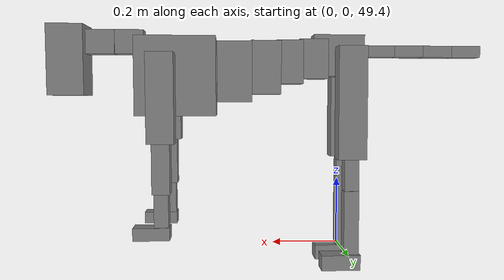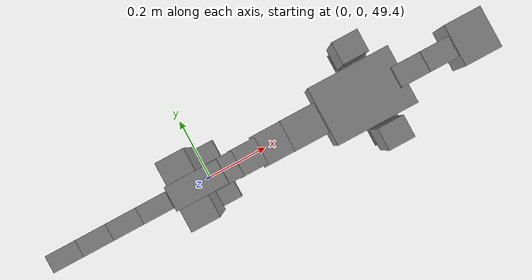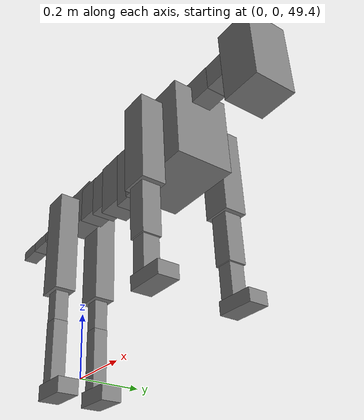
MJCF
<mujoco model="dog">

    <default>
        <joint armature="0.02" stiffness="1" damping="0.2" limited="true"/>
        <geom condim="3" friction="1 0.05 0.05" margin="0.01"/>
        <motor ctrllimited="true" ctrlrange="-1.0 1.0" forcelimited="true" gear="50"/>
    </default>

    <compiler inertiafromgeom="true" angle="radian"/>

    <option timestep="0.016" iterations="50" tolerance="1e-10" solver="Newton" jacobian="dense" cone="pyramidal"/>

    <size nconmax="20000" njmax="60000" nstack="5000000"/>
    <visual>
        <map force="0.1" zfar="30"/>
        <rgba haze="0.15 0.25 0.35 1"/>
        <quality shadowsize="2048"/>
        <global offwidth="800" offheight="800"/>
    </visual>

    <asset>
        <texture type="skybox" builtin="gradient" rgb1="0.3 0.5 0.7" rgb2="0 0 0" width="512" height="512"/>
        <texture name="texplane" type="2d" builtin="checker" rgb1=".2 .3 .4" rgb2=".1 0.15 0.2" width="512" height="512"
                 mark="cross" markrgb=".8 .8 .8"/>
        <texture name="texgeom" type="cube" builtin="flat" mark="cross" width="127" height="1278" rgb1="0.8 0.6 0.4"
                 rgb2="0.8 0.6 0.4" markrgb="1 1 1" random="0.01"/>

        <material name="matplane" reflectance="0.3" texture="texplane" texrepeat="1 1" texuniform="true"/>
        <material name="matgeom" texture="texgeom" texuniform="true" rgba="0.8 0.6 .4 1"/>
    </asset>

    <worldbody>
        <geom name="floor" pos="0 0 0" size="0 0 .25" type="plane" material="matplane" condim="3"/>

        <light directional="false" diffuse=".2 .2 .2" specular="0 0 0" pos="0 0 5" dir="0 0 -1" castshadow="false"/>
        <light mode="targetbodycom" target="torso" directional="false" diffuse=".8 .8 .8" specular="0.3 0.3 0.3"
               pos="0 0 4.0" dir="0 0 -1"/>

        <body name="root" pos="0 0 50">
            <freejoint name="root_1"/>
            <geom type="box" pos="0 0 -0.02" size="0.0774  0.0358  0.063" density="2030"/>

            <body name="spine1" pos="0.054 0 0">
                <joint name="spine1_y" axis="0 1 0" range="0 0.7" limited="true"/>
                <geom type="box" pos="0.02375 0 -0.03" size="0.04375  0.0375  0.05985" density="2030"/>

                <body name="spine2" pos="0.0612 0 0">
                    <joint name="spine2_y" axis="0 1 0" range="-0.15 0.15" limited="true"/>
                    <geom type="box" pos="0.03555  0  -0.04" size="0.04055  0.039  0.06615" density="2030"/>

                    <body name="spine3" pos="0.0730 0 0">
                        <joint name="spine3_y" axis="0 1 0" range="-0.15 0.15" limited="true"/>
                        <geom type="box" pos="0.03555  0  -0.057" size="0.04555  0.0445  0.081" density="2030"/>

                        <body name="spine4" pos="0.0780 0 0">
                            <joint name="spine4_y" axis="0 1 0" range="-0.15 0.15" limited="true"/>
                            <geom type="box" pos="0.05265  0  -0.07" size="0.05265  0.045  0.09135" density="2030"/>

                            <body name="torso" pos="0.1082 0 0">
                                <joint name="torso_y" axis="0 1 0" range="-0.15 0.15" limited="true"/>
                                <geom type="box" pos="0.11925  0  -0.085" size="0.11925  0.085  0.11745"
                                      density="2030"/>

                                <body name="neck1" pos="0.2160  0   0.0180">
                                    <joint name="neck1_y" axis="0 1 0" range="-1.2  -1" limited="true"/>
                                    <geom type="box" pos="0.0423  0  0" size="0.0423  0.03  0.036" density="2325"/>

                                    <body name="neck2" pos="0.0853  0  0">
                                        <joint name="neck2_y" axis="0 1 0" range="0.1  0" limited="true"/>
                                        <geom type="box" pos="0.0423  0  0" size="0.0423  0.03  0.036" density="2325"/>

                                        <body name="head" pos="0.0853  0  0">
                                            <joint name="head_y" axis="0 1 0" range="-0.3  -0.2" limited="true"/>
                                            <geom type="box" pos="0.0531  0  -0.055" size="0.0531  0.06  0.1044"
                                                  density="4030"/>

                                        </body>
                                    </body>
                                </body>

                                <body name="front_shoulder" pos="0.156  0   -0.0480">
                                    <joint name="front_shoulder_y" axis="0 1 0" range="-1 1.5" limited="true"/>
                                    <geom type="box" pos="0 0.13 -0.1031" size="0.0391  0.0334  0.1297" density="1158"/>
                                    <geom type="box" pos="0 -0.13 -0.1031" size="0.0391  0.0334  0.1297"
                                          density="1158"/>

                                    <body name="front_elbow" pos="0  0  -0.2062">
                                        <joint name="front_elbow_y" axis="0 1 0" range="-2 0" limited="true"/>
                                        <geom type="box" pos="0 0.13 -0.0850" size="0.0258  0.0264  0.0850"
                                              density="1081"/>
                                        <geom type="box" pos="0 -0.13 -0.0850" size="0.0258  0.0264  0.0850"
                                              density="1081"/>

                                        <body name="front_wrist" pos="0  0  -0.1699">
                                            <joint name="front_wrist_y" axis="0 1 0" range="-0.2 0" limited="true"/>
                                            <geom type="box" pos="0 0.13 -0.0551" size="0.0206  0.0228  0.0683"
                                                  density="1664"/>
                                            <geom type="box" pos="0 -0.13 -0.0551" size="0.0206  0.0228  0.0683"
                                                  density="1664"/>

                                            <body name="front_finger_end" pos="0  0  -0.1102">
                                                <joint name="front_finger_y" axis="0 1 0" range="-0.4 1"
                                                       limited="true"/>
                                                <geom type="box" pos="0.0285  0.13  -0.0035"
                                                      size="0.0523  0.0285  0.0185" density="1515"/>
                                                <geom type="box" pos="0.0285  -0.13  -0.0035"
                                                      size="0.0523  0.0285  0.0185" density="1515"/>

                                            </body>

                                        </body>
                                    </body>
                                </body>

                            </body>
                        </body>
                    </body>
                </body>
            </body>

            <body name="back_hip" pos="-0.03 0 -0.018">
                <joint name="back_hip_y" axis="0 1 0" range="-1.5 0.3" limited="true"/>
                <geom type="box" pos="0 0.07 -0.1466" size="0.0430  0.0337  0.1694" density="1154"/>
                <geom type="box" pos="0 -0.07 -0.1466" size="0.0430  0.0337  0.1694" density="1154"/>

                <body name="back_knee" pos="0  0  -0.2933">
                    <joint name="back_knee_y" axis="0 1 0" range="0 2.8" limited="true"/>
                    <geom type="box" pos="0 0.07 -0.0644" size="0.0221  0.0218  0.0799" density="1227"/>
                    <geom type="box" pos="0 -0.07 -0.0644" size="0.0221  0.0218  0.0799" density="1227"/>

                    <body name="back_ankle" pos="0  0  -0.1288">
                        <joint name="back_ankle_y" axis="0 1 0" range="-2.2 0" limited="true"/>
                        <geom type="box" pos="0 0.07 -0.0985" size="0.0227  0.0227  0.1098" density="1284"/>
                        <geom type="box" pos="0 -0.07 -0.0985" size="0.0227  0.0227  0.1098" density="1284"/>

                        <body name="back_toe_end" pos="0  0  -0.1970">
                            <joint name="back_toe_y" axis="0 1 0" range="-0.4 1" limited="true"/>
                            <geom type="box" pos="0.0320  0.07  -0.0080" size="0.0587  0.0320  0.0230" density="1515"/>
                            <geom type="box" pos="0.0320  -0.07  -0.0080" size="0.0587  0.0320  0.0230" density="1515"/>

                        </body>
                    </body>
                </body>
            </body>

            <body name="tail1" pos="-0.074 0 -0.006">
                <joint name="tail1_y" axis="0 1 0" range="-0.2 0.2" limited="true"/>
                <geom type="box" pos="-0.0536  0  0" size="0.045  0.025  0.0175" density="1587"/>

                <body name="tail2" pos="-0.09 0 0">
                    <joint name="tail2_y" axis="0 1 0" range="-0.2 0.2" limited="true"/>
                    <geom type="box" pos="-0.0536  0  0" size="0.045  0.025  0.0175" density="1587"/>

                    <body name="tail3" pos="-0.09 0 0">
                        <joint name="tail3_y" axis="0 1 0" range="-0.2 0.2" limited="true"/>
                        <geom type="box" pos="-0.0536  0  0" size="0.045  0.025  0.0175" density="1587"/>

                        <body name="tail4" pos="-0.09 0 0">
                            <joint name="tail4_y" axis="0 1 0" range="-0.2 0.2" limited="true"/>
                            <geom type="box" pos="-0.0536  0  0" size="0.045  0.025  0.0175" density="1587"/>

                        </body>
                    </body>
                </body>
            </body>
        </body>
    </worldbody>

    <actuator>
        <motor joint="spine1_y" forcerange="-150 150     "/>
        <motor joint="spine2_y" forcerange="-150 150     "/>
        <motor joint="spine3_y" forcerange="-150 150     "/>
        <motor joint="spine4_y" forcerange="-150 150     "/>
        <motor joint="torso_y" forcerange="-150 150     "/>
        <motor joint="neck1_y" forcerange="-100 100       "/>
        <motor joint="neck2_y" forcerange="-100 100       "/>
        <motor joint="head_y" forcerange="-150 150       "/>
        <motor joint="front_shoulder_y" forcerange="-184.04 138.63"/>
        <motor joint="front_elbow_y" forcerange="-127.24 164.63"/>
        <motor joint="front_wrist_y" forcerange="-71.86 110.89"/>
        <motor joint="front_finger_y" forcerange="-29.07 83.02"/>
        <motor joint="back_hip_y" forcerange="-256.91 392.52"/>
        <motor joint="back_knee_y" forcerange="-208.63 307.77"/>
        <motor joint="back_angle_y" forcerange="-165.89 97.97"/>
        <motor joint="back_toe_y" forcerange="-112.14 64.01"/>
        <motor joint="tail1_y" forcerange="-50 50     "/>
        <motor joint="tail2_y" forcerange="-50 50     "/>
        <motor joint="tail3_y" forcerange="-50 50     "/>
        <motor joint="tail4_y" forcerange="-50 50     "/>
    </actuator>
</mujoco>
